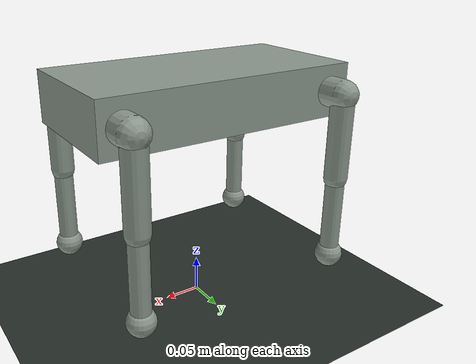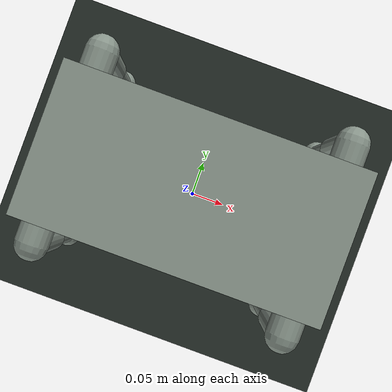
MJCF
<mujoco model="quadruped_12dof">

  <compiler angle="radian" autolimits="true"/>

  <!-- Fixed timestep and a pinned solver: determinism depends on both. -->
  <option timestep="0.002" iterations="50" solver="Newton" integrator="implicitfast" cone="pyramidal">
    <flag eulerdamp="disable"/>
  </option>

  <default>
    <joint damping="0.35" armature="0.012" frictionloss="0.02"/>
    <geom friction="0.9 0.02 0.001" density="900" rgba="0.55 0.6 0.56 1"/>
    <position kp="28" forcerange="-18 18"/>
    <default class="leg">
      <geom type="capsule" size="0.016"/>
    </default>
  </default>

  <worldbody>
    <light pos="0 0 2"/>
    <geom name="floor" type="plane" size="12 12 0.1" friction="0.9 0.02 0.001" rgba="0.15 0.18 0.16 1"/>

    <body name="torso" pos="0 0 0.30">
      <freejoint name="root"/>
      <geom name="torso" type="box" size="0.18 0.09 0.035" density="1100"/>
      <site name="imu" pos="0 0 0" size="0.01"/>

      <!-- fr: front-right, fl, hr, hl -->
      <body name="fr_hip" pos="0.15 -0.08 0">
        <joint name="fr_abd" axis="1 0 0" range="-0.7 0.7"/>
        <geom class="leg" fromto="0 0 0 0 -0.035 0" size="0.02"/>
        <body name="fr_thigh" pos="0 -0.035 0">
          <joint name="fr_hip" axis="0 1 0" range="-1.6 1.6"/>
          <geom class="leg" fromto="0 0 0 0 0 -0.115"/>
          <body name="fr_calf" pos="0 0 -0.115">
            <joint name="fr_knee" axis="0 1 0" range="-2.5 -0.2"/>
            <geom class="leg" fromto="0 0 0 0 0 -0.115" size="0.013"/>
            <geom name="fr_foot" type="sphere" size="0.019" pos="0 0 -0.115" friction="1.0 0.03 0.001"/>
          </body>
        </body>
      </body>

      <body name="fl_hip" pos="0.15 0.08 0">
        <joint name="fl_abd" axis="1 0 0" range="-0.7 0.7"/>
        <geom class="leg" fromto="0 0 0 0 0.035 0" size="0.02"/>
        <body name="fl_thigh" pos="0 0.035 0">
          <joint name="fl_hip" axis="0 1 0" range="-1.6 1.6"/>
          <geom class="leg" fromto="0 0 0 0 0 -0.115"/>
          <body name="fl_calf" pos="0 0 -0.115">
            <joint name="fl_knee" axis="0 1 0" range="-2.5 -0.2"/>
            <geom class="leg" fromto="0 0 0 0 0 -0.115" size="0.013"/>
            <geom name="fl_foot" type="sphere" size="0.019" pos="0 0 -0.115" friction="1.0 0.03 0.001"/>
          </body>
        </body>
      </body>

      <body name="hr_hip" pos="-0.15 -0.08 0">
        <joint name="hr_abd" axis="1 0 0" range="-0.7 0.7"/>
        <geom class="leg" fromto="0 0 0 0 -0.035 0" size="0.02"/>
        <body name="hr_thigh" pos="0 -0.035 0">
          <joint name="hr_hip" axis="0 1 0" range="-1.6 1.6"/>
          <geom class="leg" fromto="0 0 0 0 0 -0.115"/>
          <body name="hr_calf" pos="0 0 -0.115">
            <joint name="hr_knee" axis="0 1 0" range="-2.5 -0.2"/>
            <geom class="leg" fromto="0 0 0 0 0 -0.115" size="0.013"/>
            <geom name="hr_foot" type="sphere" size="0.019" pos="0 0 -0.115" friction="1.0 0.03 0.001"/>
          </body>
        </body>
      </body>

      <body name="hl_hip" pos="-0.15 0.08 0">
        <joint name="hl_abd" axis="1 0 0" range="-0.7 0.7"/>
        <geom class="leg" fromto="0 0 0 0 0.035 0" size="0.02"/>
        <body name="hl_thigh" pos="0 0.035 0">
          <joint name="hl_hip" axis="0 1 0" range="-1.6 1.6"/>
          <geom class="leg" fromto="0 0 0 0 0 -0.115"/>
          <body name="hl_calf" pos="0 0 -0.115">
            <joint name="hl_knee" axis="0 1 0" range="-2.5 -0.2"/>
            <geom class="leg" fromto="0 0 0 0 0 -0.115" size="0.013"/>
            <geom name="hl_foot" type="sphere" size="0.019" pos="0 0 -0.115" friction="1.0 0.03 0.001"/>
          </body>
        </body>
      </body>
    </body>
  </worldbody>

  <actuator>
    <position name="fr_abd" joint="fr_abd"/>  <position name="fr_hip" joint="fr_hip"/>  <position name="fr_knee" joint="fr_knee"/>
    <position name="fl_abd" joint="fl_abd"/>  <position name="fl_hip" joint="fl_hip"/>  <position name="fl_knee" joint="fl_knee"/>
    <position name="hr_abd" joint="hr_abd"/>  <position name="hr_hip" joint="hr_hip"/>  <position name="hr_knee" joint="hr_knee"/>
    <position name="hl_abd" joint="hl_abd"/>  <position name="hl_hip" joint="hl_hip"/>  <position name="hl_knee" joint="hl_knee"/>
  </actuator>

  <sensor>
    <framequat name="torso_quat" objtype="site" objname="imu"/>
    <framepos  name="torso_pos"  objtype="site" objname="imu"/>
  </sensor>

  <keyframe>
    <!-- nominal stance: knees folded, feet under the hips -->
    <key name="stand"
         qpos="0 0 0.232 1 0 0 0  0 0.75 -1.5  0 0.75 -1.5  0 0.75 -1.5  0 0.75 -1.5"
         ctrl="0 0.75 -1.5  0 0.75 -1.5  0 0.75 -1.5  0 0.75 -1.5"/>
  </keyframe>
</mujoco>
